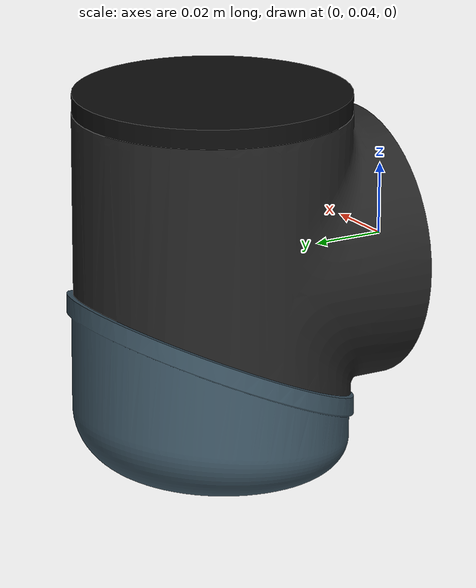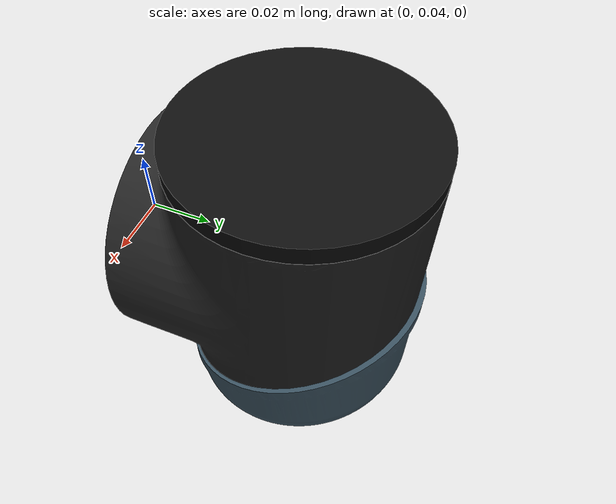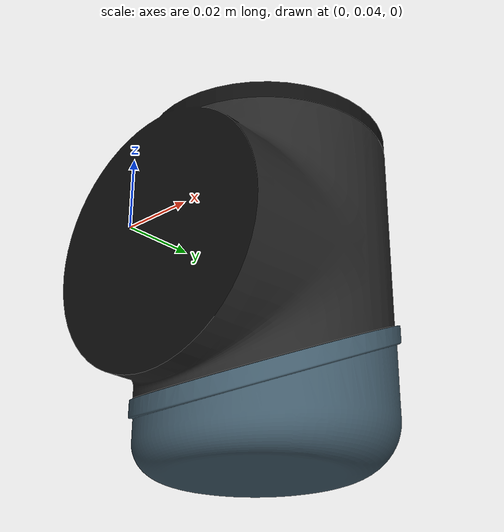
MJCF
<mujoco model="wrist1">
  <default>
    <default class="visual">
      <geom group="2" type="mesh" contype="0" conaffinity="0"/>
    </default>
    <default class="collision">
      <geom group="3" type="mesh"/>
    </default>
  </default>
  <asset>
    <material name="material_wrist1_0" specular="0.20000000000000004" shininess="1.0" rgba="0.05098039 0.05098039 0.05098039 1.0"/>
    <material name="material_wrist1_1" specular="0.20000000000000004" shininess="1.0" rgba="0.14117647 0.14117647 0.14117647 1.0"/>
    <material name="material_wrist1_2" specular="0.20000000000000004" shininess="1.0" rgba="0.25098039 0.34901961 0.40784314 1.0"/>
    <mesh file="wrist1_0.obj"/>
    <mesh file="wrist1_1.obj"/>
    <mesh file="wrist1_2.obj"/>
  </asset>
  <worldbody>
    <body name="wrist1">
      <geom mesh="wrist1_0" material="material_wrist1_2" class="visual"/>
      <geom mesh="wrist1_1" material="material_wrist1_1" class="visual"/>
      <geom mesh="wrist1_2" material="material_wrist1_0" class="visual"/>
      <geom mesh="wrist1_0" class="collision"/>
      <geom mesh="wrist1_1" class="collision"/>
      <geom mesh="wrist1_2" class="collision"/>
    </body>
  </worldbody>
</mujoco>
